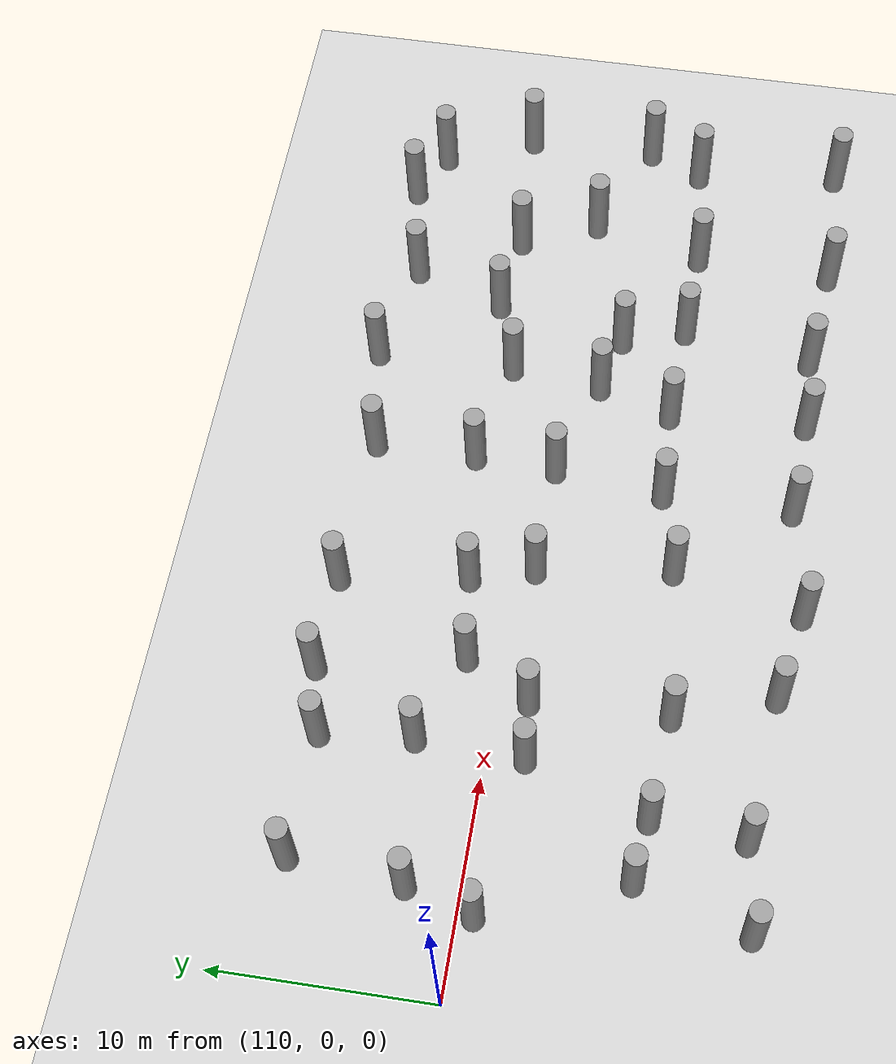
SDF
<sdf version="1.5">
 <world name="circle">
  <model name="ground">
   <static>1</static>
   <link name="link">
    <collision name="collision">
     <geometry><plane><normal>0 0 1</normal><size>100 100</size></plane></geometry>
     <surface><friction><ode><mu>100</mu><mu2>50</mu2></ode></friction></surface>
    </collision>
    <visual name="visual">
     <cast_shadows>0</cast_shadows>
     <geometry><plane><normal>0 0 1</normal><size>100 100</size></plane></geometry>
     <material>
      <script><uri>file://media/materials/scripts/gazebo.material</uri><name>Gazebo/Grey</name></script>
     </material>
    </visual>
    <velocity_decay><linear>0</linear><angular>0</angular></velocity_decay>
   </link>
  </model>
  <model name="unit_cylinder_320">
   <pose>114.611458515 -12.3438366465 2 3e-06 4e-06 -0</pose>
   <static>1</static>
   <self_collide>1</self_collide>
   <link name="link">
    <inertial>
     <mass>1</mass>
     <inertia><ixx>0.145833</ixx><ixy>0</ixy><ixz>0</ixz><iyy>0.145833</iyy><iyz>0</iyz><izz>0.125</izz></inertia>
    </inertial>
    <collision name="collision">
     <geometry><cylinder><radius>0.5</radius><length>4</length></cylinder></geometry>
    </collision>
    <visual name="visual">
     <geometry><cylinder><radius>0.5</radius><length>4</length></cylinder></geometry>
     <material>
      <script><name>Gazebo/Grey</name><uri>file://media/materials/scripts/gazebo.material</uri></script>
     </material>
    </visual>
    <collision name="cyl_collision">
     <geometry><cylinder><radius>0.5</radius><length>4</length></cylinder></geometry>
    </collision>
    <sensor name="my_contact" type="contact">
     <contact><collision>cyl_collision</collision></contact>
     <update_rate>5</update_rate>
    </sensor>
   </link>
  </model>
  <model name="unit_cylinder_321">
   <pose>116.193471507 -7.119146412 2 3e-06 4e-06 -0</pose>
   <static>1</static>
   <self_collide>1</self_collide>
   <link name="link">
    <inertial>
     <mass>1</mass>
     <inertia><ixx>0.145833</ixx><ixy>0</ixy><ixz>0</ixz><iyy>0.145833</iyy><iyz>0</iyz><izz>0.125</izz></inertia>
    </inertial>
    <collision name="collision">
     <geometry><cylinder><radius>0.5</radius><length>4</length></cylinder></geometry>
    </collision>
    <visual name="visual">
     <geometry><cylinder><radius>0.5</radius><length>4</length></cylinder></geometry>
     <material>
      <script><name>Gazebo/Grey</name><uri>file://media/materials/scripts/gazebo.material</uri></script>
     </material>
    </visual>
    <collision name="cyl_collision">
     <geometry><cylinder><radius>0.5</radius><length>4</length></cylinder></geometry>
    </collision>
    <sensor name="my_contact" type="contact">
     <contact><collision>cyl_collision</collision></contact>
     <update_rate>5</update_rate>
    </sensor>
   </link>
  </model>
  <model name="unit_cylinder_322">
   <pose>113.740221968 -0.707841878467 2 3e-06 4e-06 -0</pose>
   <static>1</static>
   <self_collide>1</self_collide>
   <link name="link">
    <inertial>
     <mass>1</mass>
     <inertia><ixx>0.145833</ixx><ixy>0</ixy><ixz>0</ixz><iyy>0.145833</iyy><iyz>0</iyz><izz>0.125</izz></inertia>
    </inertial>
    <collision name="collision">
     <geometry><cylinder><radius>0.5</radius><length>4</length></cylinder></geometry>
    </collision>
    <visual name="visual">
     <geometry><cylinder><radius>0.5</radius><length>4</length></cylinder></geometry>
     <material>
      <script><name>Gazebo/Grey</name><uri>file://media/materials/scripts/gazebo.material</uri></script>
     </material>
    </visual>
    <collision name="cyl_collision">
     <geometry><cylinder><radius>0.5</radius><length>4</length></cylinder></geometry>
    </collision>
    <sensor name="my_contact" type="contact">
     <contact><collision>cyl_collision</collision></contact>
     <update_rate>5</update_rate>
    </sensor>
   </link>
  </model>
  <model name="unit_cylinder_323">
   <pose>114.638598071 2.3729317117 2 3e-06 4e-06 -0</pose>
   <static>1</static>
   <self_collide>1</self_collide>
   <link name="link">
    <inertial>
     <mass>1</mass>
     <inertia><ixx>0.145833</ixx><ixy>0</ixy><ixz>0</ixz><iyy>0.145833</iyy><iyz>0</iyz><izz>0.125</izz></inertia>
    </inertial>
    <collision name="collision">
     <geometry><cylinder><radius>0.5</radius><length>4</length></cylinder></geometry>
    </collision>
    <visual name="visual">
     <geometry><cylinder><radius>0.5</radius><length>4</length></cylinder></geometry>
     <material>
      <script><name>Gazebo/Grey</name><uri>file://media/materials/scripts/gazebo.material</uri></script>
     </material>
    </visual>
    <collision name="cyl_collision">
     <geometry><cylinder><radius>0.5</radius><length>4</length></cylinder></geometry>
    </collision>
    <sensor name="my_contact" type="contact">
     <contact><collision>cyl_collision</collision></contact>
     <update_rate>5</update_rate>
    </sensor>
   </link>
  </model>
  <model name="unit_cylinder_324">
   <pose>115.132303946 7.58064891371 2 3e-06 4e-06 -0</pose>
   <static>1</static>
   <self_collide>1</self_collide>
   <link name="link">
    <inertial>
     <mass>1</mass>
     <inertia><ixx>0.145833</ixx><ixy>0</ixy><ixz>0</ixz><iyy>0.145833</iyy><iyz>0</iyz><izz>0.125</izz></inertia>
    </inertial>
    <collision name="collision">
     <geometry><cylinder><radius>0.5</radius><length>4</length></cylinder></geometry>
    </collision>
    <visual name="visual">
     <geometry><cylinder><radius>0.5</radius><length>4</length></cylinder></geometry>
     <material>
      <script><name>Gazebo/Grey</name><uri>file://media/materials/scripts/gazebo.material</uri></script>
     </material>
    </visual>
    <collision name="cyl_collision">
     <geometry><cylinder><radius>0.5</radius><length>4</length></cylinder></geometry>
    </collision>
    <sensor name="my_contact" type="contact">
     <contact><collision>cyl_collision</collision></contact>
     <update_rate>5</update_rate>
    </sensor>
   </link>
  </model>
  <model name="unit_cylinder_335">
   <pose>118.664496418 -11.7655375915 2 3e-06 4e-06 -0</pose>
   <static>1</static>
   <self_collide>1</self_collide>
   <link name="link">
    <inertial>
     <mass>1</mass>
     <inertia><ixx>0.145833</ixx><ixy>0</ixy><ixz>0</ixz><iyy>0.145833</iyy><iyz>0</iyz><izz>0.125</izz></inertia>
    </inertial>
    <collision name="collision">
     <geometry><cylinder><radius>0.5</radius><length>4</length></cylinder></geometry>
    </collision>
    <visual name="visual">
     <geometry><cylinder><radius>0.5</radius><length>4</length></cylinder></geometry>
     <material>
      <script><name>Gazebo/Grey</name><uri>file://media/materials/scripts/gazebo.material</uri></script>
     </material>
    </visual>
    <collision name="cyl_collision">
     <geometry><cylinder><radius>0.5</radius><length>4</length></cylinder></geometry>
    </collision>
    <sensor name="my_contact" type="contact">
     <contact><collision>cyl_collision</collision></contact>
     <update_rate>5</update_rate>
    </sensor>
   </link>
  </model>
  <model name="unit_cylinder_336">
   <pose>119.032995275 -7.45557894741 2 3e-06 4e-06 -0</pose>
   <static>1</static>
   <self_collide>1</self_collide>
   <link name="link">
    <inertial>
     <mass>1</mass>
     <inertia><ixx>0.145833</ixx><ixy>0</ixy><ixz>0</ixz><iyy>0.145833</iyy><iyz>0</iyz><izz>0.125</izz></inertia>
    </inertial>
    <collision name="collision">
     <geometry><cylinder><radius>0.5</radius><length>4</length></cylinder></geometry>
    </collision>
    <visual name="visual">
     <geometry><cylinder><radius>0.5</radius><length>4</length></cylinder></geometry>
     <material>
      <script><name>Gazebo/Grey</name><uri>file://media/materials/scripts/gazebo.material</uri></script>
     </material>
    </visual>
    <collision name="cyl_collision">
     <geometry><cylinder><radius>0.5</radius><length>4</length></cylinder></geometry>
    </collision>
    <sensor name="my_contact" type="contact">
     <contact><collision>cyl_collision</collision></contact>
     <update_rate>5</update_rate>
    </sensor>
   </link>
  </model>
  <model name="unit_cylinder_337">
   <pose>121.001309098 -1.79039298593 2 3e-06 4e-06 -0</pose>
   <static>1</static>
   <self_collide>1</self_collide>
   <link name="link">
    <inertial>
     <mass>1</mass>
     <inertia><ixx>0.145833</ixx><ixy>0</ixy><ixz>0</ixz><iyy>0.145833</iyy><iyz>0</iyz><izz>0.125</izz></inertia>
    </inertial>
    <collision name="collision">
     <geometry><cylinder><radius>0.5</radius><length>4</length></cylinder></geometry>
    </collision>
    <visual name="visual">
     <geometry><cylinder><radius>0.5</radius><length>4</length></cylinder></geometry>
     <material>
      <script><name>Gazebo/Grey</name><uri>file://media/materials/scripts/gazebo.material</uri></script>
     </material>
    </visual>
    <collision name="cyl_collision">
     <geometry><cylinder><radius>0.5</radius><length>4</length></cylinder></geometry>
    </collision>
    <sensor name="my_contact" type="contact">
     <contact><collision>cyl_collision</collision></contact>
     <update_rate>5</update_rate>
    </sensor>
   </link>
  </model>
  <model name="unit_cylinder_338">
   <pose>121.249508116 3.14398693989 2 3e-06 4e-06 -0</pose>
   <static>1</static>
   <self_collide>1</self_collide>
   <link name="link">
    <inertial>
     <mass>1</mass>
     <inertia><ixx>0.145833</ixx><ixy>0</ixy><ixz>0</ixz><iyy>0.145833</iyy><iyz>0</iyz><izz>0.125</izz></inertia>
    </inertial>
    <collision name="collision">
     <geometry><cylinder><radius>0.5</radius><length>4</length></cylinder></geometry>
    </collision>
    <visual name="visual">
     <geometry><cylinder><radius>0.5</radius><length>4</length></cylinder></geometry>
     <material>
      <script><name>Gazebo/Grey</name><uri>file://media/materials/scripts/gazebo.material</uri></script>
     </material>
    </visual>
    <collision name="cyl_collision">
     <geometry><cylinder><radius>0.5</radius><length>4</length></cylinder></geometry>
    </collision>
    <sensor name="my_contact" type="contact">
     <contact><collision>cyl_collision</collision></contact>
     <update_rate>5</update_rate>
    </sensor>
   </link>
  </model>
  <model name="unit_cylinder_339">
   <pose>120.878671662 7.40968585641 2 3e-06 4e-06 -0</pose>
   <static>1</static>
   <self_collide>1</self_collide>
   <link name="link">
    <inertial>
     <mass>1</mass>
     <inertia><ixx>0.145833</ixx><ixy>0</ixy><ixz>0</ixz><iyy>0.145833</iyy><iyz>0</iyz><izz>0.125</izz></inertia>
    </inertial>
    <collision name="collision">
     <geometry><cylinder><radius>0.5</radius><length>4</length></cylinder></geometry>
    </collision>
    <visual name="visual">
     <geometry><cylinder><radius>0.5</radius><length>4</length></cylinder></geometry>
     <material>
      <script><name>Gazebo/Grey</name><uri>file://media/materials/scripts/gazebo.material</uri></script>
     </material>
    </visual>
    <collision name="cyl_collision">
     <geometry><cylinder><radius>0.5</radius><length>4</length></cylinder></geometry>
    </collision>
    <sensor name="my_contact" type="contact">
     <contact><collision>cyl_collision</collision></contact>
     <update_rate>5</update_rate>
    </sensor>
   </link>
  </model>
  <model name="unit_cylinder_350">
   <pose>125.500734446 -12.4340967396 2 3e-06 4e-06 -0</pose>
   <static>1</static>
   <self_collide>1</self_collide>
   <link name="link">
    <inertial>
     <mass>1</mass>
     <inertia><ixx>0.145833</ixx><ixy>0</ixy><ixz>0</ixz><iyy>0.145833</iyy><iyz>0</iyz><izz>0.125</izz></inertia>
    </inertial>
    <collision name="collision">
     <geometry><cylinder><radius>0.5</radius><length>4</length></cylinder></geometry>
    </collision>
    <visual name="visual">
     <geometry><cylinder><radius>0.5</radius><length>4</length></cylinder></geometry>
     <material>
      <script><name>Gazebo/Grey</name><uri>file://media/materials/scripts/gazebo.material</uri></script>
     </material>
    </visual>
    <collision name="cyl_collision">
     <geometry><cylinder><radius>0.5</radius><length>4</length></cylinder></geometry>
    </collision>
    <sensor name="my_contact" type="contact">
     <contact><collision>cyl_collision</collision></contact>
     <update_rate>5</update_rate>
    </sensor>
   </link>
  </model>
  <model name="unit_cylinder_351">
   <pose>123.90027489 -7.86266779828 2 3e-06 4e-06 -0</pose>
   <static>1</static>
   <self_collide>1</self_collide>
   <link name="link">
    <inertial>
     <mass>1</mass>
     <inertia><ixx>0.145833</ixx><ixy>0</ixy><ixz>0</ixz><iyy>0.145833</iyy><iyz>0</iyz><izz>0.125</izz></inertia>
    </inertial>
    <collision name="collision">
     <geometry><cylinder><radius>0.5</radius><length>4</length></cylinder></geometry>
    </collision>
    <visual name="visual">
     <geometry><cylinder><radius>0.5</radius><length>4</length></cylinder></geometry>
     <material>
      <script><name>Gazebo/Grey</name><uri>file://media/materials/scripts/gazebo.material</uri></script>
     </material>
    </visual>
    <collision name="cyl_collision">
     <geometry><cylinder><radius>0.5</radius><length>4</length></cylinder></geometry>
    </collision>
    <sensor name="my_contact" type="contact">
     <contact><collision>cyl_collision</collision></contact>
     <update_rate>5</update_rate>
    </sensor>
   </link>
  </model>
  <model name="unit_cylinder_352">
   <pose>123.717997514 -1.52688009283 2 3e-06 4e-06 -0</pose>
   <static>1</static>
   <self_collide>1</self_collide>
   <link name="link">
    <inertial>
     <mass>1</mass>
     <inertia><ixx>0.145833</ixx><ixy>0</ixy><ixz>0</ixz><iyy>0.145833</iyy><iyz>0</iyz><izz>0.125</izz></inertia>
    </inertial>
    <collision name="collision">
     <geometry><cylinder><radius>0.5</radius><length>4</length></cylinder></geometry>
    </collision>
    <visual name="visual">
     <geometry><cylinder><radius>0.5</radius><length>4</length></cylinder></geometry>
     <material>
      <script><name>Gazebo/Grey</name><uri>file://media/materials/scripts/gazebo.material</uri></script>
     </material>
    </visual>
    <collision name="cyl_collision">
     <geometry><cylinder><radius>0.5</radius><length>4</length></cylinder></geometry>
    </collision>
    <sensor name="my_contact" type="contact">
     <contact><collision>cyl_collision</collision></contact>
     <update_rate>5</update_rate>
    </sensor>
   </link>
  </model>
  <model name="unit_cylinder_353">
   <pose>125.430681689 1.52551922045 2 3e-06 4e-06 -0</pose>
   <static>1</static>
   <self_collide>1</self_collide>
   <link name="link">
    <inertial>
     <mass>1</mass>
     <inertia><ixx>0.145833</ixx><ixy>0</ixy><ixz>0</ixz><iyy>0.145833</iyy><iyz>0</iyz><izz>0.125</izz></inertia>
    </inertial>
    <collision name="collision">
     <geometry><cylinder><radius>0.5</radius><length>4</length></cylinder></geometry>
    </collision>
    <visual name="visual">
     <geometry><cylinder><radius>0.5</radius><length>4</length></cylinder></geometry>
     <material>
      <script><name>Gazebo/Grey</name><uri>file://media/materials/scripts/gazebo.material</uri></script>
     </material>
    </visual>
    <collision name="cyl_collision">
     <geometry><cylinder><radius>0.5</radius><length>4</length></cylinder></geometry>
    </collision>
    <sensor name="my_contact" type="contact">
     <contact><collision>cyl_collision</collision></contact>
     <update_rate>5</update_rate>
    </sensor>
   </link>
  </model>
  <model name="unit_cylinder_354">
   <pose>124.013615269 8.18443837349 2 3e-06 4e-06 -0</pose>
   <static>1</static>
   <self_collide>1</self_collide>
   <link name="link">
    <inertial>
     <mass>1</mass>
     <inertia><ixx>0.145833</ixx><ixy>0</ixy><ixz>0</ixz><iyy>0.145833</iyy><iyz>0</iyz><izz>0.125</izz></inertia>
    </inertial>
    <collision name="collision">
     <geometry><cylinder><radius>0.5</radius><length>4</length></cylinder></geometry>
    </collision>
    <visual name="visual">
     <geometry><cylinder><radius>0.5</radius><length>4</length></cylinder></geometry>
     <material>
      <script><name>Gazebo/Grey</name><uri>file://media/materials/scripts/gazebo.material</uri></script>
     </material>
    </visual>
    <collision name="cyl_collision">
     <geometry><cylinder><radius>0.5</radius><length>4</length></cylinder></geometry>
    </collision>
    <sensor name="my_contact" type="contact">
     <contact><collision>cyl_collision</collision></contact>
     <update_rate>5</update_rate>
    </sensor>
   </link>
  </model>
  <model name="unit_cylinder_365">
   <pose>129.748963827 -13.216289499 2 3e-06 4e-06 -0</pose>
   <static>1</static>
   <self_collide>1</self_collide>
   <link name="link">
    <inertial>
     <mass>1</mass>
     <inertia><ixx>0.145833</ixx><ixy>0</ixy><ixz>0</ixz><iyy>0.145833</iyy><iyz>0</iyz><izz>0.125</izz></inertia>
    </inertial>
    <collision name="collision">
     <geometry><cylinder><radius>0.5</radius><length>4</length></cylinder></geometry>
    </collision>
    <visual name="visual">
     <geometry><cylinder><radius>0.5</radius><length>4</length></cylinder></geometry>
     <material>
      <script><name>Gazebo/Grey</name><uri>file://media/materials/scripts/gazebo.material</uri></script>
     </material>
    </visual>
    <collision name="cyl_collision">
     <geometry><cylinder><radius>0.5</radius><length>4</length></cylinder></geometry>
    </collision>
    <sensor name="my_contact" type="contact">
     <contact><collision>cyl_collision</collision></contact>
     <update_rate>5</update_rate>
    </sensor>
   </link>
  </model>
  <model name="unit_cylinder_366">
   <pose>131.148375889 -7.13907890475 2 3e-06 4e-06 -0</pose>
   <static>1</static>
   <self_collide>1</self_collide>
   <link name="link">
    <inertial>
     <mass>1</mass>
     <inertia><ixx>0.145833</ixx><ixy>0</ixy><ixz>0</ixz><iyy>0.145833</iyy><iyz>0</iyz><izz>0.125</izz></inertia>
    </inertial>
    <collision name="collision">
     <geometry><cylinder><radius>0.5</radius><length>4</length></cylinder></geometry>
    </collision>
    <visual name="visual">
     <geometry><cylinder><radius>0.5</radius><length>4</length></cylinder></geometry>
     <material>
      <script><name>Gazebo/Grey</name><uri>file://media/materials/scripts/gazebo.material</uri></script>
     </material>
    </visual>
    <collision name="cyl_collision">
     <geometry><cylinder><radius>0.5</radius><length>4</length></cylinder></geometry>
    </collision>
    <sensor name="my_contact" type="contact">
     <contact><collision>cyl_collision</collision></contact>
     <update_rate>5</update_rate>
    </sensor>
   </link>
  </model>
  <model name="unit_cylinder_367">
   <pose>130.283239996 -0.852925205186 2 3e-06 4e-06 -0</pose>
   <static>1</static>
   <self_collide>1</self_collide>
   <link name="link">
    <inertial>
     <mass>1</mass>
     <inertia><ixx>0.145833</ixx><ixy>0</ixy><ixz>0</ixz><iyy>0.145833</iyy><iyz>0</iyz><izz>0.125</izz></inertia>
    </inertial>
    <collision name="collision">
     <geometry><cylinder><radius>0.5</radius><length>4</length></cylinder></geometry>
    </collision>
    <visual name="visual">
     <geometry><cylinder><radius>0.5</radius><length>4</length></cylinder></geometry>
     <material>
      <script><name>Gazebo/Grey</name><uri>file://media/materials/scripts/gazebo.material</uri></script>
     </material>
    </visual>
    <collision name="cyl_collision">
     <geometry><cylinder><radius>0.5</radius><length>4</length></cylinder></geometry>
    </collision>
    <sensor name="my_contact" type="contact">
     <contact><collision>cyl_collision</collision></contact>
     <update_rate>5</update_rate>
    </sensor>
   </link>
  </model>
  <model name="unit_cylinder_368">
   <pose>129.426303511 2.0821471568 2 3e-06 4e-06 -0</pose>
   <static>1</static>
   <self_collide>1</self_collide>
   <link name="link">
    <inertial>
     <mass>1</mass>
     <inertia><ixx>0.145833</ixx><ixy>0</ixy><ixz>0</ixz><iyy>0.145833</iyy><iyz>0</iyz><izz>0.125</izz></inertia>
    </inertial>
    <collision name="collision">
     <geometry><cylinder><radius>0.5</radius><length>4</length></cylinder></geometry>
    </collision>
    <visual name="visual">
     <geometry><cylinder><radius>0.5</radius><length>4</length></cylinder></geometry>
     <material>
      <script><name>Gazebo/Grey</name><uri>file://media/materials/scripts/gazebo.material</uri></script>
     </material>
    </visual>
    <collision name="cyl_collision">
     <geometry><cylinder><radius>0.5</radius><length>4</length></cylinder></geometry>
    </collision>
    <sensor name="my_contact" type="contact">
     <contact><collision>cyl_collision</collision></contact>
     <update_rate>5</update_rate>
    </sensor>
   </link>
  </model>
  <model name="unit_cylinder_369">
   <pose>128.5889346 8.02942855701 2 3e-06 4e-06 -0</pose>
   <static>1</static>
   <self_collide>1</self_collide>
   <link name="link">
    <inertial>
     <mass>1</mass>
     <inertia><ixx>0.145833</ixx><ixy>0</ixy><ixz>0</ixz><iyy>0.145833</iyy><iyz>0</iyz><izz>0.125</izz></inertia>
    </inertial>
    <collision name="collision">
     <geometry><cylinder><radius>0.5</radius><length>4</length></cylinder></geometry>
    </collision>
    <visual name="visual">
     <geometry><cylinder><radius>0.5</radius><length>4</length></cylinder></geometry>
     <material>
      <script><name>Gazebo/Grey</name><uri>file://media/materials/scripts/gazebo.material</uri></script>
     </material>
    </visual>
    <collision name="cyl_collision">
     <geometry><cylinder><radius>0.5</radius><length>4</length></cylinder></geometry>
    </collision>
    <sensor name="my_contact" type="contact">
     <contact><collision>cyl_collision</collision></contact>
     <update_rate>5</update_rate>
    </sensor>
   </link>
  </model>
  <model name="unit_cylinder_380">
   <pose>135.084468666 -12.3160220361 2 3e-06 4e-06 -0</pose>
   <static>1</static>
   <self_collide>1</self_collide>
   <link name="link">
    <inertial>
     <mass>1</mass>
     <inertia><ixx>0.145833</ixx><ixy>0</ixy><ixz>0</ixz><iyy>0.145833</iyy><iyz>0</iyz><izz>0.125</izz></inertia>
    </inertial>
    <collision name="collision">
     <geometry><cylinder><radius>0.5</radius><length>4</length></cylinder></geometry>
    </collision>
    <visual name="visual">
     <geometry><cylinder><radius>0.5</radius><length>4</length></cylinder></geometry>
     <material>
      <script><name>Gazebo/Grey</name><uri>file://media/materials/scripts/gazebo.material</uri></script>
     </material>
    </visual>
    <collision name="cyl_collision">
     <geometry><cylinder><radius>0.5</radius><length>4</length></cylinder></geometry>
    </collision>
    <sensor name="my_contact" type="contact">
     <contact><collision>cyl_collision</collision></contact>
     <update_rate>5</update_rate>
    </sensor>
   </link>
  </model>
  <model name="unit_cylinder_381">
   <pose>135.109195537 -6.16985482728 2 3e-06 4e-06 -0</pose>
   <static>1</static>
   <self_collide>1</self_collide>
   <link name="link">
    <inertial>
     <mass>1</mass>
     <inertia><ixx>0.145833</ixx><ixy>0</ixy><ixz>0</ixz><iyy>0.145833</iyy><iyz>0</iyz><izz>0.125</izz></inertia>
    </inertial>
    <collision name="collision">
     <geometry><cylinder><radius>0.5</radius><length>4</length></cylinder></geometry>
    </collision>
    <visual name="visual">
     <geometry><cylinder><radius>0.5</radius><length>4</length></cylinder></geometry>
     <material>
      <script><name>Gazebo/Grey</name><uri>file://media/materials/scripts/gazebo.material</uri></script>
     </material>
    </visual>
    <collision name="cyl_collision">
     <geometry><cylinder><radius>0.5</radius><length>4</length></cylinder></geometry>
    </collision>
    <sensor name="my_contact" type="contact">
     <contact><collision>cyl_collision</collision></contact>
     <update_rate>5</update_rate>
    </sensor>
   </link>
  </model>
  <model name="unit_cylinder_382">
   <pose>135.742456504 -0.98238797973 2 3e-06 4e-06 -0</pose>
   <static>1</static>
   <self_collide>1</self_collide>
   <link name="link">
    <inertial>
     <mass>1</mass>
     <inertia><ixx>0.145833</ixx><ixy>0</ixy><ixz>0</ixz><iyy>0.145833</iyy><iyz>0</iyz><izz>0.125</izz></inertia>
    </inertial>
    <collision name="collision">
     <geometry><cylinder><radius>0.5</radius><length>4</length></cylinder></geometry>
    </collision>
    <visual name="visual">
     <geometry><cylinder><radius>0.5</radius><length>4</length></cylinder></geometry>
     <material>
      <script><name>Gazebo/Grey</name><uri>file://media/materials/scripts/gazebo.material</uri></script>
     </material>
    </visual>
    <collision name="cyl_collision">
     <geometry><cylinder><radius>0.5</radius><length>4</length></cylinder></geometry>
    </collision>
    <sensor name="my_contact" type="contact">
     <contact><collision>cyl_collision</collision></contact>
     <update_rate>5</update_rate>
    </sensor>
   </link>
  </model>
  <model name="unit_cylinder_383">
   <pose>135.919308941 2.88981030322 2 3e-06 4e-06 -0</pose>
   <static>1</static>
   <self_collide>1</self_collide>
   <link name="link">
    <inertial>
     <mass>1</mass>
     <inertia><ixx>0.145833</ixx><ixy>0</ixy><ixz>0</ixz><iyy>0.145833</iyy><iyz>0</iyz><izz>0.125</izz></inertia>
    </inertial>
    <collision name="collision">
     <geometry><cylinder><radius>0.5</radius><length>4</length></cylinder></geometry>
    </collision>
    <visual name="visual">
     <geometry><cylinder><radius>0.5</radius><length>4</length></cylinder></geometry>
     <material>
      <script><name>Gazebo/Grey</name><uri>file://media/materials/scripts/gazebo.material</uri></script>
     </material>
    </visual>
    <collision name="cyl_collision">
     <geometry><cylinder><radius>0.5</radius><length>4</length></cylinder></geometry>
    </collision>
    <sensor name="my_contact" type="contact">
     <contact><collision>cyl_collision</collision></contact>
     <update_rate>5</update_rate>
    </sensor>
   </link>
  </model>
  <model name="unit_cylinder_384">
   <pose>135.951890504 7.70551024193 2 3e-06 4e-06 -0</pose>
   <static>1</static>
   <self_collide>1</self_collide>
   <link name="link">
    <inertial>
     <mass>1</mass>
     <inertia><ixx>0.145833</ixx><ixy>0</ixy><ixz>0</ixz><iyy>0.145833</iyy><iyz>0</iyz><izz>0.125</izz></inertia>
    </inertial>
    <collision name="collision">
     <geometry><cylinder><radius>0.5</radius><length>4</length></cylinder></geometry>
    </collision>
    <visual name="visual">
     <geometry><cylinder><radius>0.5</radius><length>4</length></cylinder></geometry>
     <material>
      <script><name>Gazebo/Grey</name><uri>file://media/materials/scripts/gazebo.material</uri></script>
     </material>
    </visual>
    <collision name="cyl_collision">
     <geometry><cylinder><radius>0.5</radius><length>4</length></cylinder></geometry>
    </collision>
    <sensor name="my_contact" type="contact">
     <contact><collision>cyl_collision</collision></contact>
     <update_rate>5</update_rate>
    </sensor>
   </link>
  </model>
  <model name="unit_cylinder_395">
   <pose>139.919298814 -12.532885081 2 3e-06 4e-06 -0</pose>
   <static>1</static>
   <self_collide>1</self_collide>
   <link name="link">
    <inertial>
     <mass>1</mass>
     <inertia><ixx>0.145833</ixx><ixy>0</ixy><ixz>0</ixz><iyy>0.145833</iyy><iyz>0</iyz><izz>0.125</izz></inertia>
    </inertial>
    <collision name="collision">
     <geometry><cylinder><radius>0.5</radius><length>4</length></cylinder></geometry>
    </collision>
    <visual name="visual">
     <geometry><cylinder><radius>0.5</radius><length>4</length></cylinder></geometry>
     <material>
      <script><name>Gazebo/Grey</name><uri>file://media/materials/scripts/gazebo.material</uri></script>
     </material>
    </visual>
    <collision name="cyl_collision">
     <geometry><cylinder><radius>0.5</radius><length>4</length></cylinder></geometry>
    </collision>
    <sensor name="my_contact" type="contact">
     <contact><collision>cyl_collision</collision></contact>
     <update_rate>5</update_rate>
    </sensor>
   </link>
  </model>
  <model name="unit_cylinder_396">
   <pose>139.571117979 -5.99413895394 2 3e-06 4e-06 -0</pose>
   <static>1</static>
   <self_collide>1</self_collide>
   <link name="link">
    <inertial>
     <mass>1</mass>
     <inertia><ixx>0.145833</ixx><ixy>0</ixy><ixz>0</ixz><iyy>0.145833</iyy><iyz>0</iyz><izz>0.125</izz></inertia>
    </inertial>
    <collision name="collision">
     <geometry><cylinder><radius>0.5</radius><length>4</length></cylinder></geometry>
    </collision>
    <visual name="visual">
     <geometry><cylinder><radius>0.5</radius><length>4</length></cylinder></geometry>
     <material>
      <script><name>Gazebo/Grey</name><uri>file://media/materials/scripts/gazebo.material</uri></script>
     </material>
    </visual>
    <collision name="cyl_collision">
     <geometry><cylinder><radius>0.5</radius><length>4</length></cylinder></geometry>
    </collision>
    <sensor name="my_contact" type="contact">
     <contact><collision>cyl_collision</collision></contact>
     <update_rate>5</update_rate>
    </sensor>
   </link>
  </model>
  <model name="unit_cylinder_397">
   <pose>140.705965525 -2.45367358984 2 3e-06 4e-06 -0</pose>
   <static>1</static>
   <self_collide>1</self_collide>
   <link name="link">
    <inertial>
     <mass>1</mass>
     <inertia><ixx>0.145833</ixx><ixy>0</ixy><ixz>0</ixz><iyy>0.145833</iyy><iyz>0</iyz><izz>0.125</izz></inertia>
    </inertial>
    <collision name="collision">
     <geometry><cylinder><radius>0.5</radius><length>4</length></cylinder></geometry>
    </collision>
    <visual name="visual">
     <geometry><cylinder><radius>0.5</radius><length>4</length></cylinder></geometry>
     <material>
      <script><name>Gazebo/Grey</name><uri>file://media/materials/scripts/gazebo.material</uri></script>
     </material>
    </visual>
    <collision name="cyl_collision">
     <geometry><cylinder><radius>0.5</radius><length>4</length></cylinder></geometry>
    </collision>
    <sensor name="my_contact" type="contact">
     <contact><collision>cyl_collision</collision></contact>
     <update_rate>5</update_rate>
    </sensor>
   </link>
  </model>
  <model name="unit_cylinder_398">
   <pose>141.221531755 1.90827426267 2 3e-06 4e-06 -0</pose>
   <static>1</static>
   <self_collide>1</self_collide>
   <link name="link">
    <inertial>
     <mass>1</mass>
     <inertia><ixx>0.145833</ixx><ixy>0</ixy><ixz>0</ixz><iyy>0.145833</iyy><iyz>0</iyz><izz>0.125</izz></inertia>
    </inertial>
    <collision name="collision">
     <geometry><cylinder><radius>0.5</radius><length>4</length></cylinder></geometry>
    </collision>
    <visual name="visual">
     <geometry><cylinder><radius>0.5</radius><length>4</length></cylinder></geometry>
     <material>
      <script><name>Gazebo/Grey</name><uri>file://media/materials/scripts/gazebo.material</uri></script>
     </material>
    </visual>
    <collision name="cyl_collision">
     <geometry><cylinder><radius>0.5</radius><length>4</length></cylinder></geometry>
    </collision>
    <sensor name="my_contact" type="contact">
     <contact><collision>cyl_collision</collision></contact>
     <update_rate>5</update_rate>
    </sensor>
   </link>
  </model>
  <model name="unit_cylinder_399">
   <pose>141.133206691 8.58389023156 2 3e-06 4e-06 -0</pose>
   <static>1</static>
   <self_collide>1</self_collide>
   <link name="link">
    <inertial>
     <mass>1</mass>
     <inertia><ixx>0.145833</ixx><ixy>0</ixy><ixz>0</ixz><iyy>0.145833</iyy><iyz>0</iyz><izz>0.125</izz></inertia>
    </inertial>
    <collision name="collision">
     <geometry><cylinder><radius>0.5</radius><length>4</length></cylinder></geometry>
    </collision>
    <visual name="visual">
     <geometry><cylinder><radius>0.5</radius><length>4</length></cylinder></geometry>
     <material>
      <script><name>Gazebo/Grey</name><uri>file://media/materials/scripts/gazebo.material</uri></script>
     </material>
    </visual>
    <collision name="cyl_collision">
     <geometry><cylinder><radius>0.5</radius><length>4</length></cylinder></geometry>
    </collision>
    <sensor name="my_contact" type="contact">
     <contact><collision>cyl_collision</collision></contact>
     <update_rate>5</update_rate>
    </sensor>
   </link>
  </model>
  <model name="unit_cylinder_410">
   <pose>143.647931756 -12.3894567594 2 3e-06 4e-06 -0</pose>
   <static>1</static>
   <self_collide>1</self_collide>
   <link name="link">
    <inertial>
     <mass>1</mass>
     <inertia><ixx>0.145833</ixx><ixy>0</ixy><ixz>0</ixz><iyy>0.145833</iyy><iyz>0</iyz><izz>0.125</izz></inertia>
    </inertial>
    <collision name="collision">
     <geometry><cylinder><radius>0.5</radius><length>4</length></cylinder></geometry>
    </collision>
    <visual name="visual">
     <geometry><cylinder><radius>0.5</radius><length>4</length></cylinder></geometry>
     <material>
      <script><name>Gazebo/Grey</name><uri>file://media/materials/scripts/gazebo.material</uri></script>
     </material>
    </visual>
    <collision name="cyl_collision">
     <geometry><cylinder><radius>0.5</radius><length>4</length></cylinder></geometry>
    </collision>
    <sensor name="my_contact" type="contact">
     <contact><collision>cyl_collision</collision></contact>
     <update_rate>5</update_rate>
    </sensor>
   </link>
  </model>
  <model name="unit_cylinder_411">
   <pose>144.581692435 -6.19488395616 2 3e-06 4e-06 -0</pose>
   <static>1</static>
   <self_collide>1</self_collide>
   <link name="link">
    <inertial>
     <mass>1</mass>
     <inertia><ixx>0.145833</ixx><ixy>0</ixy><ixz>0</ixz><iyy>0.145833</iyy><iyz>0</iyz><izz>0.125</izz></inertia>
    </inertial>
    <collision name="collision">
     <geometry><cylinder><radius>0.5</radius><length>4</length></cylinder></geometry>
    </collision>
    <visual name="visual">
     <geometry><cylinder><radius>0.5</radius><length>4</length></cylinder></geometry>
     <material>
      <script><name>Gazebo/Grey</name><uri>file://media/materials/scripts/gazebo.material</uri></script>
     </material>
    </visual>
    <collision name="cyl_collision">
     <geometry><cylinder><radius>0.5</radius><length>4</length></cylinder></geometry>
    </collision>
    <sensor name="my_contact" type="contact">
     <contact><collision>cyl_collision</collision></contact>
     <update_rate>5</update_rate>
    </sensor>
   </link>
  </model>
  <model name="unit_cylinder_412">
   <pose>143.611519421 -3.17456119815 2 3e-06 4e-06 -0</pose>
   <static>1</static>
   <self_collide>1</self_collide>
   <link name="link">
    <inertial>
     <mass>1</mass>
     <inertia><ixx>0.145833</ixx><ixy>0</ixy><ixz>0</ixz><iyy>0.145833</iyy><iyz>0</iyz><izz>0.125</izz></inertia>
    </inertial>
    <collision name="collision">
     <geometry><cylinder><radius>0.5</radius><length>4</length></cylinder></geometry>
    </collision>
    <visual name="visual">
     <geometry><cylinder><radius>0.5</radius><length>4</length></cylinder></geometry>
     <material>
      <script><name>Gazebo/Grey</name><uri>file://media/materials/scripts/gazebo.material</uri></script>
     </material>
    </visual>
    <collision name="cyl_collision">
     <geometry><cylinder><radius>0.5</radius><length>4</length></cylinder></geometry>
    </collision>
    <sensor name="my_contact" type="contact">
     <contact><collision>cyl_collision</collision></contact>
     <update_rate>5</update_rate>
    </sensor>
   </link>
  </model>
  <model name="unit_cylinder_413">
   <pose>144.82135282 3.1207512731 2 3e-06 4e-06 -0</pose>
   <static>1</static>
   <self_collide>1</self_collide>
   <link name="link">
    <inertial>
     <mass>1</mass>
     <inertia><ixx>0.145833</ixx><ixy>0</ixy><ixz>0</ixz><iyy>0.145833</iyy><iyz>0</iyz><izz>0.125</izz></inertia>
    </inertial>
    <collision name="collision">
     <geometry><cylinder><radius>0.5</radius><length>4</length></cylinder></geometry>
    </collision>
    <visual name="visual">
     <geometry><cylinder><radius>0.5</radius><length>4</length></cylinder></geometry>
     <material>
      <script><name>Gazebo/Grey</name><uri>file://media/materials/scripts/gazebo.material</uri></script>
     </material>
    </visual>
    <collision name="cyl_collision">
     <geometry><cylinder><radius>0.5</radius><length>4</length></cylinder></geometry>
    </collision>
    <sensor name="my_contact" type="contact">
     <contact><collision>cyl_collision</collision></contact>
     <update_rate>5</update_rate>
    </sensor>
   </link>
  </model>
  <model name="unit_cylinder_414">
   <pose>146.359160889 7.52938535167 2 3e-06 4e-06 -0</pose>
   <static>1</static>
   <self_collide>1</self_collide>
   <link name="link">
    <inertial>
     <mass>1</mass>
     <inertia><ixx>0.145833</ixx><ixy>0</ixy><ixz>0</ixz><iyy>0.145833</iyy><iyz>0</iyz><izz>0.125</izz></inertia>
    </inertial>
    <collision name="collision">
     <geometry><cylinder><radius>0.5</radius><length>4</length></cylinder></geometry>
    </collision>
    <visual name="visual">
     <geometry><cylinder><radius>0.5</radius><length>4</length></cylinder></geometry>
     <material>
      <script><name>Gazebo/Grey</name><uri>file://media/materials/scripts/gazebo.material</uri></script>
     </material>
    </visual>
    <collision name="cyl_collision">
     <geometry><cylinder><radius>0.5</radius><length>4</length></cylinder></geometry>
    </collision>
    <sensor name="my_contact" type="contact">
     <contact><collision>cyl_collision</collision></contact>
     <update_rate>5</update_rate>
    </sensor>
   </link>
  </model>
  <model name="unit_cylinder_425">
   <pose>148.949360895 -12.9251050236 2 3e-06 4e-06 -0</pose>
   <static>1</static>
   <self_collide>1</self_collide>
   <link name="link">
    <inertial>
     <mass>1</mass>
     <inertia><ixx>0.145833</ixx><ixy>0</ixy><ixz>0</ixz><iyy>0.145833</iyy><iyz>0</iyz><izz>0.125</izz></inertia>
    </inertial>
    <collision name="collision">
     <geometry><cylinder><radius>0.5</radius><length>4</length></cylinder></geometry>
    </collision>
    <visual name="visual">
     <geometry><cylinder><radius>0.5</radius><length>4</length></cylinder></geometry>
     <material>
      <script><name>Gazebo/Grey</name><uri>file://media/materials/scripts/gazebo.material</uri></script>
     </material>
    </visual>
    <collision name="cyl_collision">
     <geometry><cylinder><radius>0.5</radius><length>4</length></cylinder></geometry>
    </collision>
    <sensor name="my_contact" type="contact">
     <contact><collision>cyl_collision</collision></contact>
     <update_rate>5</update_rate>
    </sensor>
   </link>
  </model>
  <model name="unit_cylinder_426">
   <pose>149.165012897 -6.34778796168 2 3e-06 4e-06 -0</pose>
   <static>1</static>
   <self_collide>1</self_collide>
   <link name="link">
    <inertial>
     <mass>1</mass>
     <inertia><ixx>0.145833</ixx><ixy>0</ixy><ixz>0</ixz><iyy>0.145833</iyy><iyz>0</iyz><izz>0.125</izz></inertia>
    </inertial>
    <collision name="collision">
     <geometry><cylinder><radius>0.5</radius><length>4</length></cylinder></geometry>
    </collision>
    <visual name="visual">
     <geometry><cylinder><radius>0.5</radius><length>4</length></cylinder></geometry>
     <material>
      <script><name>Gazebo/Grey</name><uri>file://media/materials/scripts/gazebo.material</uri></script>
     </material>
    </visual>
    <collision name="cyl_collision">
     <geometry><cylinder><radius>0.5</radius><length>4</length></cylinder></geometry>
    </collision>
    <sensor name="my_contact" type="contact">
     <contact><collision>cyl_collision</collision></contact>
     <update_rate>5</update_rate>
    </sensor>
   </link>
  </model>
  <model name="unit_cylinder_427">
   <pose>150.528656547 -1.01354679056 2 3e-06 4e-06 -0</pose>
   <static>1</static>
   <self_collide>1</self_collide>
   <link name="link">
    <inertial>
     <mass>1</mass>
     <inertia><ixx>0.145833</ixx><ixy>0</ixy><ixz>0</ixz><iyy>0.145833</iyy><iyz>0</iyz><izz>0.125</izz></inertia>
    </inertial>
    <collision name="collision">
     <geometry><cylinder><radius>0.5</radius><length>4</length></cylinder></geometry>
    </collision>
    <visual name="visual">
     <geometry><cylinder><radius>0.5</radius><length>4</length></cylinder></geometry>
     <material>
      <script><name>Gazebo/Grey</name><uri>file://media/materials/scripts/gazebo.material</uri></script>
     </material>
    </visual>
    <collision name="cyl_collision">
     <geometry><cylinder><radius>0.5</radius><length>4</length></cylinder></geometry>
    </collision>
    <sensor name="my_contact" type="contact">
     <contact><collision>cyl_collision</collision></contact>
     <update_rate>5</update_rate>
    </sensor>
   </link>
  </model>
  <model name="unit_cylinder_428">
   <pose>148.920453501 2.66395992532 2 3e-06 4e-06 -0</pose>
   <static>1</static>
   <self_collide>1</self_collide>
   <link name="link">
    <inertial>
     <mass>1</mass>
     <inertia><ixx>0.145833</ixx><ixy>0</ixy><ixz>0</ixz><iyy>0.145833</iyy><iyz>0</iyz><izz>0.125</izz></inertia>
    </inertial>
    <collision name="collision">
     <geometry><cylinder><radius>0.5</radius><length>4</length></cylinder></geometry>
    </collision>
    <visual name="visual">
     <geometry><cylinder><radius>0.5</radius><length>4</length></cylinder></geometry>
     <material>
      <script><name>Gazebo/Grey</name><uri>file://media/materials/scripts/gazebo.material</uri></script>
     </material>
    </visual>
    <collision name="cyl_collision">
     <geometry><cylinder><radius>0.5</radius><length>4</length></cylinder></geometry>
    </collision>
    <sensor name="my_contact" type="contact">
     <contact><collision>cyl_collision</collision></contact>
     <update_rate>5</update_rate>
    </sensor>
   </link>
  </model>
  <model name="unit_cylinder_429">
   <pose>151.352527554 8.54339234098 2 3e-06 4e-06 -0</pose>
   <static>1</static>
   <self_collide>1</self_collide>
   <link name="link">
    <inertial>
     <mass>1</mass>
     <inertia><ixx>0.145833</ixx><ixy>0</ixy><ixz>0</ixz><iyy>0.145833</iyy><iyz>0</iyz><izz>0.125</izz></inertia>
    </inertial>
    <collision name="collision">
     <geometry><cylinder><radius>0.5</radius><length>4</length></cylinder></geometry>
    </collision>
    <visual name="visual">
     <geometry><cylinder><radius>0.5</radius><length>4</length></cylinder></geometry>
     <material>
      <script><name>Gazebo/Grey</name><uri>file://media/materials/scripts/gazebo.material</uri></script>
     </material>
    </visual>
    <collision name="cyl_collision">
     <geometry><cylinder><radius>0.5</radius><length>4</length></cylinder></geometry>
    </collision>
    <sensor name="my_contact" type="contact">
     <contact><collision>cyl_collision</collision></contact>
     <update_rate>5</update_rate>
    </sensor>
   </link>
  </model>
  <model name="unit_cylinder_440">
   <pose>155.374021176 -12.7898894892 2 3e-06 4e-06 -0</pose>
   <static>1</static>
   <self_collide>1</self_collide>
   <link name="link">
    <inertial>
     <mass>1</mass>
     <inertia><ixx>0.145833</ixx><ixy>0</ixy><ixz>0</ixz><iyy>0.145833</iyy><iyz>0</iyz><izz>0.125</izz></inertia>
    </inertial>
    <collision name="collision">
     <geometry><cylinder><radius>0.5</radius><length>4</length></cylinder></geometry>
    </collision>
    <visual name="visual">
     <geometry><cylinder><radius>0.5</radius><length>4</length></cylinder></geometry>
     <material>
      <script><name>Gazebo/Grey</name><uri>file://media/materials/scripts/gazebo.material</uri></script>
     </material>
    </visual>
    <collision name="cyl_collision">
     <geometry><cylinder><radius>0.5</radius><length>4</length></cylinder></geometry>
    </collision>
    <sensor name="my_contact" type="contact">
     <contact><collision>cyl_collision</collision></contact>
     <update_rate>5</update_rate>
    </sensor>
   </link>
  </model>
  <model name="unit_cylinder_441">
   <pose>154.558435788 -5.81349600555 2 3e-06 4e-06 -0</pose>
   <static>1</static>
   <self_collide>1</self_collide>
   <link name="link">
    <inertial>
     <mass>1</mass>
     <inertia><ixx>0.145833</ixx><ixy>0</ixy><ixz>0</ixz><iyy>0.145833</iyy><iyz>0</iyz><izz>0.125</izz></inertia>
    </inertial>
    <collision name="collision">
     <geometry><cylinder><radius>0.5</radius><length>4</length></cylinder></geometry>
    </collision>
    <visual name="visual">
     <geometry><cylinder><radius>0.5</radius><length>4</length></cylinder></geometry>
     <material>
      <script><name>Gazebo/Grey</name><uri>file://media/materials/scripts/gazebo.material</uri></script>
     </material>
    </visual>
    <collision name="cyl_collision">
     <geometry><cylinder><radius>0.5</radius><length>4</length></cylinder></geometry>
    </collision>
    <sensor name="my_contact" type="contact">
     <contact><collision>cyl_collision</collision></contact>
     <update_rate>5</update_rate>
    </sensor>
   </link>
  </model>
  <model name="unit_cylinder_442">
   <pose>155.722504534 -3.21450387031 2 3e-06 4e-06 -0</pose>
   <static>1</static>
   <self_collide>1</self_collide>
   <link name="link">
    <inertial>
     <mass>1</mass>
     <inertia><ixx>0.145833</ixx><ixy>0</ixy><ixz>0</ixz><iyy>0.145833</iyy><iyz>0</iyz><izz>0.125</izz></inertia>
    </inertial>
    <collision name="collision">
     <geometry><cylinder><radius>0.5</radius><length>4</length></cylinder></geometry>
    </collision>
    <visual name="visual">
     <geometry><cylinder><radius>0.5</radius><length>4</length></cylinder></geometry>
     <material>
      <script><name>Gazebo/Grey</name><uri>file://media/materials/scripts/gazebo.material</uri></script>
     </material>
    </visual>
    <collision name="cyl_collision">
     <geometry><cylinder><radius>0.5</radius><length>4</length></cylinder></geometry>
    </collision>
    <sensor name="my_contact" type="contact">
     <contact><collision>cyl_collision</collision></contact>
     <update_rate>5</update_rate>
    </sensor>
   </link>
  </model>
  <model name="unit_cylinder_443">
   <pose>155.609890813 3.05752025487 2 3e-06 4e-06 -0</pose>
   <static>1</static>
   <self_collide>1</self_collide>
   <link name="link">
    <inertial>
     <mass>1</mass>
     <inertia><ixx>0.145833</ixx><ixy>0</ixy><ixz>0</ixz><iyy>0.145833</iyy><iyz>0</iyz><izz>0.125</izz></inertia>
    </inertial>
    <collision name="collision">
     <geometry><cylinder><radius>0.5</radius><length>4</length></cylinder></geometry>
    </collision>
    <visual name="visual">
     <geometry><cylinder><radius>0.5</radius><length>4</length></cylinder></geometry>
     <material>
      <script><name>Gazebo/Grey</name><uri>file://media/materials/scripts/gazebo.material</uri></script>
     </material>
    </visual>
    <collision name="cyl_collision">
     <geometry><cylinder><radius>0.5</radius><length>4</length></cylinder></geometry>
    </collision>
    <sensor name="my_contact" type="contact">
     <contact><collision>cyl_collision</collision></contact>
     <update_rate>5</update_rate>
    </sensor>
   </link>
  </model>
  <model name="unit_cylinder_444">
   <pose>153.827778854 7.36037987792 2 3e-06 4e-06 -0</pose>
   <static>1</static>
   <self_collide>1</self_collide>
   <link name="link">
    <inertial>
     <mass>1</mass>
     <inertia><ixx>0.145833</ixx><ixy>0</ixy><ixz>0</ixz><iyy>0.145833</iyy><iyz>0</iyz><izz>0.125</izz></inertia>
    </inertial>
    <collision name="collision">
     <geometry><cylinder><radius>0.5</radius><length>4</length></cylinder></geometry>
    </collision>
    <visual name="visual">
     <geometry><cylinder><radius>0.5</radius><length>4</length></cylinder></geometry>
     <material>
      <script><name>Gazebo/Grey</name><uri>file://media/materials/scripts/gazebo.material</uri></script>
     </material>
    </visual>
    <collision name="cyl_collision">
     <geometry><cylinder><radius>0.5</radius><length>4</length></cylinder></geometry>
    </collision>
    <sensor name="my_contact" type="contact">
     <contact><collision>cyl_collision</collision></contact>
     <update_rate>5</update_rate>
    </sensor>
   </link>
  </model>
 </world>
</sdf>
